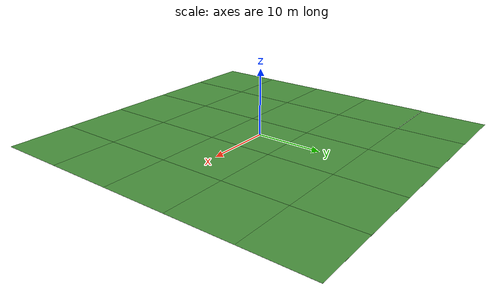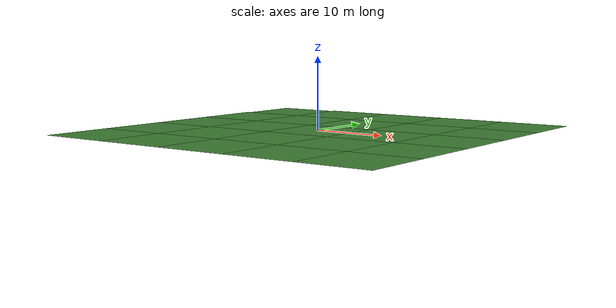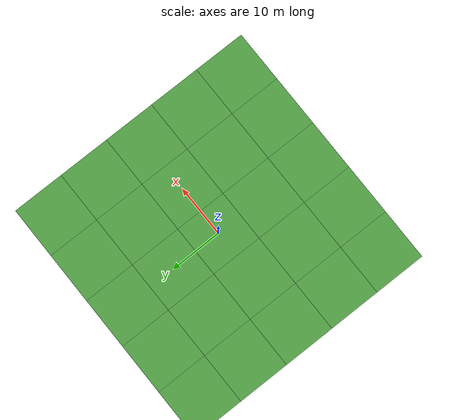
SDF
<?xml version='1.0'?>
<sdf version='1.4'>
  <model name='grass_plane'>
    <static>true</static>
    <link name='link'>
      <collision name='collision'>
        <geometry>
          <plane>
            <normal>0 0 1</normal>
            <size>25 25</size>
          </plane>
        </geometry>
        <surface>
          <friction>
            <ode>
              <mu>0.5</mu>
              <mu2>.5</mu2>
            </ode>
          </friction>
        </surface>
      </collision>

      <visual name='visual00'>
        <pose>-20 20 0 0 0 0</pose>

        <cast_shadows>false</cast_shadows>
        <geometry>
          <plane>
            <normal>0 0 1</normal>
            <size>10 10</size>
          </plane>
        </geometry>
        <material>
          <script>
            <uri>model://grass_plane/materials/scripts</uri>
            <uri>model://grass_plane/materials/textures</uri>
            <name>vrc/grass</name>
          </script>
        </material>
      </visual>

	  <visual name='visual01'>
        <pose>-10 20 0 0 0 0</pose>

        <cast_shadows>false</cast_shadows>
        <geometry>
          <plane>
            <normal>0 0 1</normal>
            <size>10 10</size>
          </plane>
        </geometry>
        <material>
          <script>
            <uri>model://grass_plane/materials/scripts</uri>
            <uri>model://grass_plane/materials/textures</uri>
            <name>vrc/grass</name>
          </script>
        </material>
      </visual>

	  <visual name='visual02'>
        <pose>0 20 0 0 0 0</pose>

        <cast_shadows>false</cast_shadows>
        <geometry>
          <plane>
            <normal>0 0 1</normal>
            <size>10 10</size>
          </plane>
        </geometry>
        <material>
          <script>
            <uri>model://grass_plane/materials/scripts</uri>
            <uri>model://grass_plane/materials/textures</uri>
            <name>vrc/grass</name>
          </script>
        </material>
      </visual>

	  <visual name='visual03'>
        <pose>10 20 0 0 0 0</pose>

        <cast_shadows>false</cast_shadows>
        <geometry>
          <plane>
            <normal>0 0 1</normal>
            <size>10 10</size>
          </plane>
        </geometry>
        <material>
          <script>
            <uri>model://grass_plane/materials/scripts</uri>
            <uri>model://grass_plane/materials/textures</uri>
            <name>vrc/grass</name>
          </script>
        </material>
      </visual>

	  <visual name='visual04'>
        <pose>20 20 0 0 0 0</pose>

        <cast_shadows>false</cast_shadows>
        <geometry>
          <plane>
            <normal>0 0 1</normal>
            <size>10 10</size>
          </plane>
        </geometry>
        <material>
          <script>
            <uri>model://grass_plane/materials/scripts</uri>
            <uri>model://grass_plane/materials/textures</uri>
            <name>vrc/grass</name>
          </script>
        </material>
      </visual>

	  <visual name='visual10'>
        <pose>-20 10 0 0 0 0</pose>

        <cast_shadows>false</cast_shadows>
        <geometry>
          <plane>
            <normal>0 0 1</normal>
            <size>10 10</size>
          </plane>
        </geometry>
        <material>
          <script>
            <uri>model://grass_plane/materials/scripts</uri>
            <uri>model://grass_plane/materials/textures</uri>
            <name>vrc/grass</name>
          </script>
        </material>
      </visual>

	  <visual name='visual11'>
        <pose>-10 10 0 0 0 0</pose>

        <cast_shadows>false</cast_shadows>
        <geometry>
          <plane>
            <normal>0 0 1</normal>
            <size>10 10</size>
          </plane>
        </geometry>
        <material>
          <script>
            <uri>model://grass_plane/materials/scripts</uri>
            <uri>model://grass_plane/materials/textures</uri>
            <name>vrc/grass</name>
          </script>
        </material>
      </visual>

	  <visual name='visual12'>
        <pose>0 10 0 0 0 0</pose>

        <cast_shadows>false</cast_shadows>
        <geometry>
          <plane>
            <normal>0 0 1</normal>
            <size>10 10</size>
          </plane>
        </geometry>
        <material>
          <script>
            <uri>model://grass_plane/materials/scripts</uri>
            <uri>model://grass_plane/materials/textures</uri>
            <name>vrc/grass</name>
          </script>
        </material>
      </visual>

	  <visual name='visual13'>
        <pose>10 10 0 0 0 0</pose>

        <cast_shadows>false</cast_shadows>
        <geometry>
          <plane>
            <normal>0 0 1</normal>
            <size>10 10</size>
          </plane>
        </geometry>
        <material>
          <script>
            <uri>model://grass_plane/materials/scripts</uri>
            <uri>model://grass_plane/materials/textures</uri>
            <name>vrc/grass</name>
          </script>
        </material>
      </visual>

	  <visual name='visual14'>
        <pose>20 10 0 0 0 0</pose>

        <cast_shadows>false</cast_shadows>
        <geometry>
          <plane>
            <normal>0 0 1</normal>
            <size>10 10</size>
          </plane>
        </geometry>
        <material>
          <script>
            <uri>model://grass_plane/materials/scripts</uri>
            <uri>model://grass_plane/materials/textures</uri>
            <name>vrc/grass</name>
          </script>
        </material>
      </visual>

	  <visual name='visual20'>
        <pose>-20 0 0 0 0 0</pose>

        <cast_shadows>false</cast_shadows>
        <geometry>
          <plane>
            <normal>0 0 1</normal>
            <size>10 10</size>
          </plane>
        </geometry>
        <material>
          <script>
            <uri>model://grass_plane/materials/scripts</uri>
            <uri>model://grass_plane/materials/textures</uri>
            <name>vrc/grass</name>
          </script>
        </material>
      </visual>

	  <visual name='visual21'>
        <pose>-10 0 0 0 0 0</pose>

        <cast_shadows>false</cast_shadows>
        <geometry>
          <plane>
            <normal>0 0 1</normal>
            <size>10 10</size>
          </plane>
        </geometry>
        <material>
          <script>
            <uri>model://grass_plane/materials/scripts</uri>
            <uri>model://grass_plane/materials/textures</uri>
            <name>vrc/grass</name>
          </script>
        </material>
      </visual>

	  <visual name='visual22'>
        <pose>0 0 0 0 0 0</pose>

        <cast_shadows>false</cast_shadows>
        <geometry>
          <plane>
            <normal>0 0 1</normal>
            <size>10 10</size>
          </plane>
        </geometry>
        <material>
          <script>
            <uri>model://grass_plane/materials/scripts</uri>
            <uri>model://grass_plane/materials/textures</uri>
            <name>vrc/grass</name>
          </script>
        </material>
      </visual>

	  <visual name='visual23'>
        <pose>10 0 0 0 0 0</pose>

        <cast_shadows>false</cast_shadows>
        <geometry>
          <plane>
            <normal>0 0 1</normal>
            <size>10 10</size>
          </plane>
        </geometry>
        <material>
          <script>
            <uri>model://grass_plane/materials/scripts</uri>
            <uri>model://grass_plane/materials/textures</uri>
            <name>vrc/grass</name>
          </script>
        </material>
      </visual>

	  <visual name='visual24'>
        <pose>20 0 0 0 0 0</pose>

        <cast_shadows>false</cast_shadows>
        <geometry>
          <plane>
            <normal>0 0 1</normal>
            <size>10 10</size>
          </plane>
        </geometry>
        <material>
          <script>
            <uri>model://grass_plane/materials/scripts</uri>
            <uri>model://grass_plane/materials/textures</uri>
            <name>vrc/grass</name>
          </script>
        </material>
      </visual>

	  <visual name='visual30'>
        <pose>-20 -10 0 0 0 0</pose>

        <cast_shadows>false</cast_shadows>
        <geometry>
          <plane>
            <normal>0 0 1</normal>
            <size>10 10</size>
          </plane>
        </geometry>
        <material>
          <script>
            <uri>model://grass_plane/materials/scripts</uri>
            <uri>model://grass_plane/materials/textures</uri>
            <name>vrc/grass</name>
          </script>
        </material>
      </visual>

	  <visual name='visual31'>
        <pose>-10 -10 0 0 0 0</pose>

        <cast_shadows>false</cast_shadows>
        <geometry>
          <plane>
            <normal>0 0 1</normal>
            <size>10 10</size>
          </plane>
        </geometry>
        <material>
          <script>
            <uri>model://grass_plane/materials/scripts</uri>
            <uri>model://grass_plane/materials/textures</uri>
            <name>vrc/grass</name>
          </script>
        </material>
      </visual>

	  <visual name='visual32'>
        <pose>0 -10 0 0 0 0</pose>

        <cast_shadows>false</cast_shadows>
        <geometry>
          <plane>
            <normal>0 0 1</normal>
            <size>10 10</size>
          </plane>
        </geometry>
        <material>
          <script>
            <uri>model://grass_plane/materials/scripts</uri>
            <uri>model://grass_plane/materials/textures</uri>
            <name>vrc/grass</name>
          </script>
        </material>
      </visual>

	  <visual name='visual33'>
        <pose>10 -10 0 0 0 0</pose>

        <cast_shadows>false</cast_shadows>
        <geometry>
          <plane>
            <normal>0 0 1</normal>
            <size>10 10</size>
          </plane>
        </geometry>
        <material>
          <script>
            <uri>model://grass_plane/materials/scripts</uri>
            <uri>model://grass_plane/materials/textures</uri>
            <name>vrc/grass</name>
          </script>
        </material>
      </visual>

	  <visual name='visual34'>
        <pose>20 -10 0 0 0 0</pose>

        <cast_shadows>false</cast_shadows>
        <geometry>
          <plane>
            <normal>0 0 1</normal>
            <size>10 10</size>
          </plane>
        </geometry>
        <material>
          <script>
            <uri>model://grass_plane/materials/scripts</uri>
            <uri>model://grass_plane/materials/textures</uri>
            <name>vrc/grass</name>
          </script>
        </material>
      </visual>

	  <visual name='visual40'>
        <pose>-20 -20 0 0 0 0</pose>

        <cast_shadows>false</cast_shadows>
        <geometry>
          <plane>
            <normal>0 0 1</normal>
            <size>10 10</size>
          </plane>
        </geometry>
        <material>
          <script>
            <uri>model://grass_plane/materials/scripts</uri>
            <uri>model://grass_plane/materials/textures</uri>
            <name>vrc/grass</name>
          </script>
        </material>
      </visual>

	  <visual name='visual41'>
        <pose>-10 -20 0 0 0 0</pose>

        <cast_shadows>false</cast_shadows>
        <geometry>
          <plane>
            <normal>0 0 1</normal>
            <size>10 10</size>
          </plane>
        </geometry>
        <material>
          <script>
            <uri>model://grass_plane/materials/scripts</uri>
            <uri>model://grass_plane/materials/textures</uri>
            <name>vrc/grass</name>
          </script>
        </material>
      </visual>

	  <visual name='visual42'>
        <pose>0 -20 0 0 0 0</pose>

        <cast_shadows>false</cast_shadows>
        <geometry>
          <plane>
            <normal>0 0 1</normal>
            <size>10 10</size>
          </plane>
        </geometry>
        <material>
          <script>
            <uri>model://grass_plane/materials/scripts</uri>
            <uri>model://grass_plane/materials/textures</uri>
            <name>vrc/grass</name>
          </script>
        </material>
      </visual>

	  <visual name='visual43'>
        <pose>10 -20 0 0 0 0</pose>

        <cast_shadows>false</cast_shadows>
        <geometry>
          <plane>
            <normal>0 0 1</normal>
            <size>10 10</size>
          </plane>
        </geometry>
        <material>
          <script>
            <uri>model://grass_plane/materials/scripts</uri>
            <uri>model://grass_plane/materials/textures</uri>
            <name>vrc/grass</name>
          </script>
        </material>
      </visual>

	  <visual name='visual44'>
        <pose>20 -20 0 0 0 0</pose>

        <cast_shadows>false</cast_shadows>
        <geometry>
          <plane>
            <normal>0 0 1</normal>
            <size>10 10</size>
          </plane>
        </geometry>
        <material>
          <script>
            <uri>model://grass_plane/materials/scripts</uri>
            <uri>model://grass_plane/materials/textures</uri>
            <name>vrc/grass</name>
          </script>
        </material>
      </visual>

    </link>
  </model>
</sdf>
